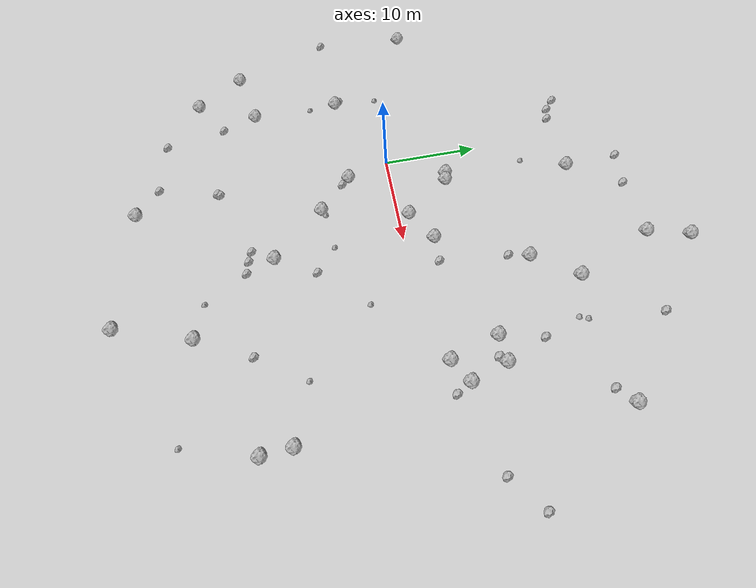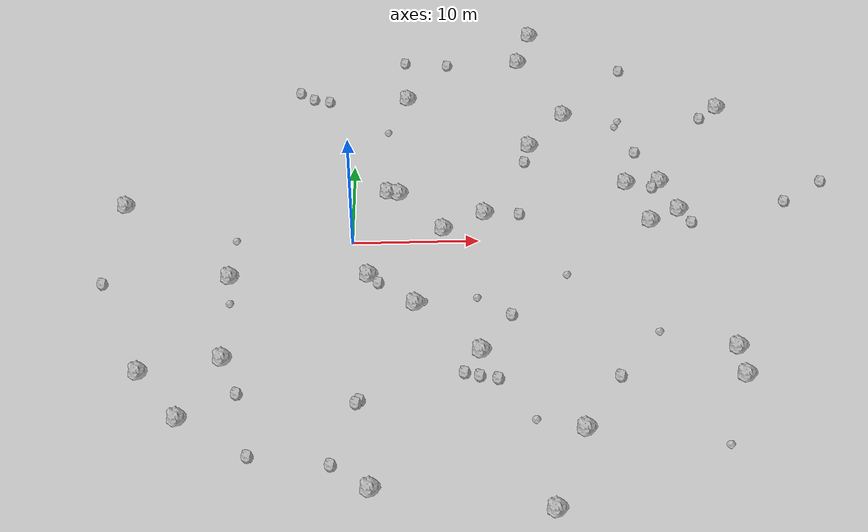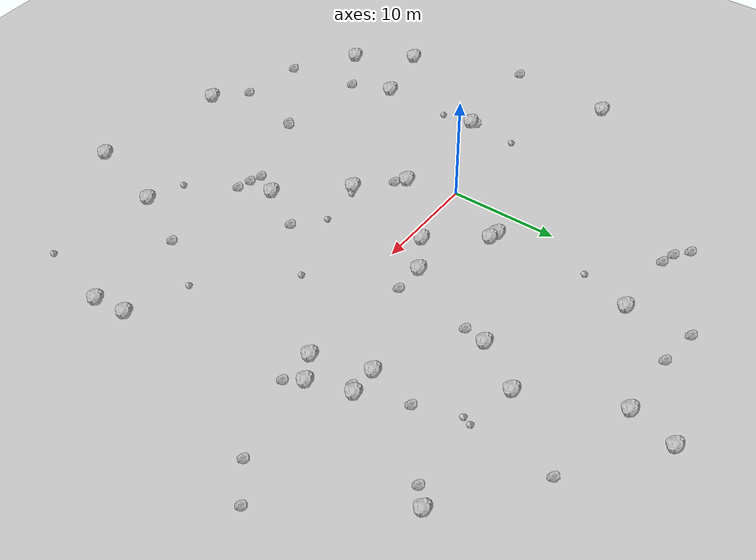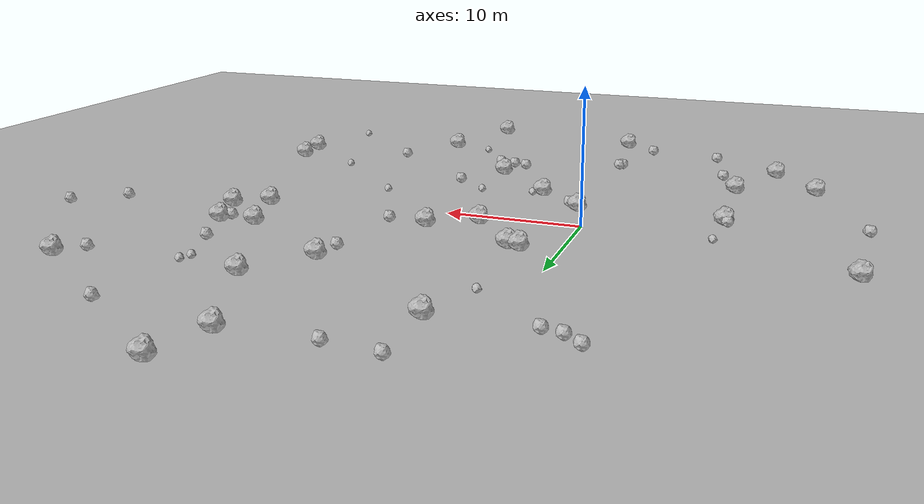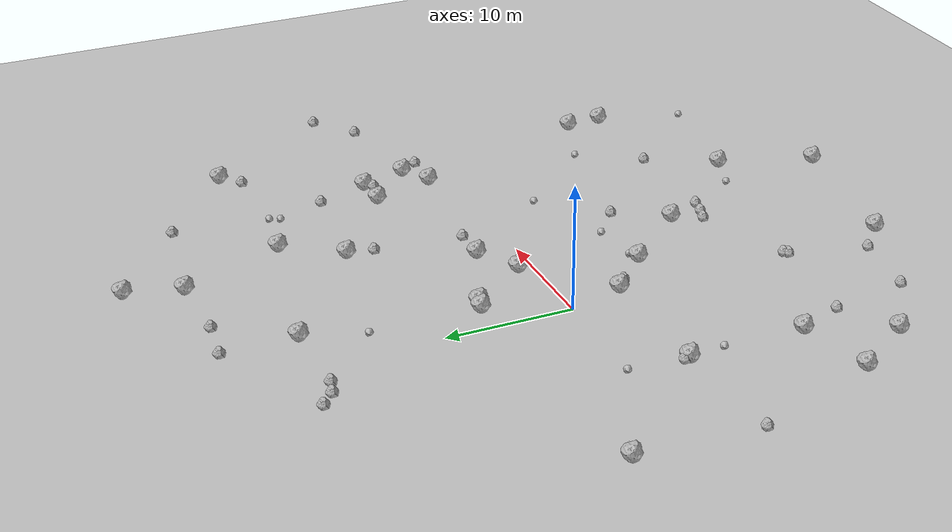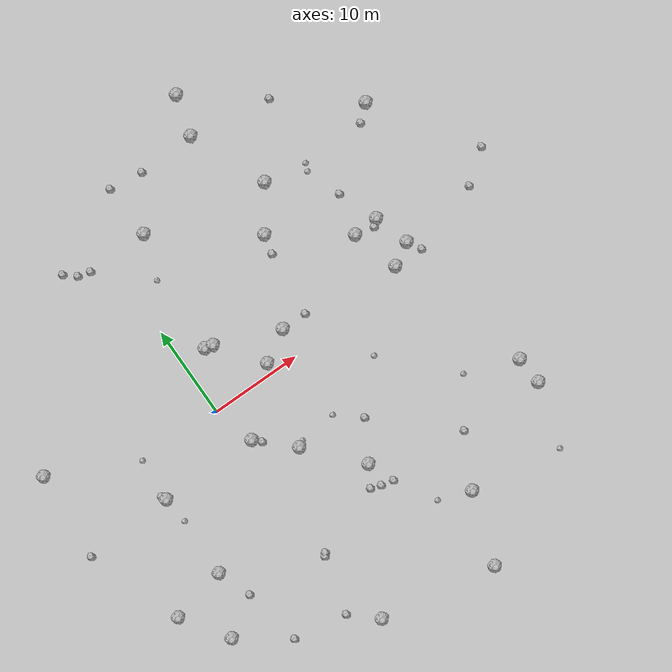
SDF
<sdf version="1.6">
 <world name="default">
  <include><uri>model://custom_ground</uri></include>
  <include><uri>model://sun</uri></include>
  <model name="rock1_0_0">
   <include><uri>model://rock1</uri><pose>29.059063461837425 -16.462699022643832 0.5 0 0 0</pose></include>
  </model>
  <model name="rock1_0_1">
   <include><uri>model://rock1</uri><pose>31.089119189638232 17.47931736922417 0.5 0 0 0</pose></include>
  </model>
  <model name="rock1_0_2">
   <include><uri>model://rock1</uri><pose>4.420348112582573 19.430249538574195 0.5 0 0 0</pose></include>
  </model>
  <model name="rock1_0_3">
   <include><uri>model://rock1</uri><pose>1.8487295856868222 -27.171056192955714 0.5 0 0 0</pose></include>
  </model>
  <model name="rock1_0_4">
   <include><uri>model://rock1</uri><pose>3.710402980066796 5.883594964835176 0.5 0 0 0</pose></include>
  </model>
  <model name="rock1_0_5">
   <include><uri>model://rock1</uri><pose>22.31363023445499 6.829210135725411 0.5 0 0 0</pose></include>
  </model>
  <model name="rock1_0_6">
   <include><uri>model://rock1</uri><pose>23.840737223351006 1.7832460847529106 0.5 0 0 0</pose></include>
  </model>
  <model name="rock1_0_7">
   <include><uri>model://rock1</uri><pose>26.24897104157845 3.185752703556574 0.5 0 0 0</pose></include>
  </model>
  <model name="rock1_0_8">
   <include><uri>model://rock1</uri><pose>-11.943861887500924 -19.983453683427662 0.5 0 0 0</pose></include>
  </model>
  <model name="rock1_0_9">
   <include><uri>model://rock1</uri><pose>7.242347670424227 1.1409997131137715 0.5 0 0 0</pose></include>
  </model>
  <model name="rock1_0_10">
   <include><uri>model://rock1</uri><pose>17.747404276811224 16.681608058786153 0.5 0 0 0</pose></include>
  </model>
  <model name="rock1_0_11">
   <include><uri>model://rock1</uri><pose>17.015834010433544 -21.717289930792354 0.5 0 0 0</pose></include>
  </model>
  <model name="rock1_0_12">
   <include><uri>model://rock1</uri><pose>9.847956789815505 -13.349562966110437 0.5 0 0 0</pose></include>
  </model>
  <model name="rock1_0_13">
   <include><uri>model://rock1</uri><pose>-9.33347560698663 -4.4387042215465335 0.5 0 0 0</pose></include>
  </model>
  <model name="rock1_0_14">
   <include><uri>model://rock1</uri><pose>-9.212783495404677 -13.740995031278803 0.5 0 0 0</pose></include>
  </model>
  <model name="rock1_0_15">
   <include><uri>model://rock1</uri><pose>1.3712645872022868 -4.4377695922704135 0.5 0 0 0</pose></include>
  </model>
  <model name="rock1_0_16">
   <include><uri>model://rock1</uri><pose>15.439551142951608 29.379708416784666 0.5 0 0 0</pose></include>
  </model>
  <model name="rock1_0_17">
   <include><uri>model://rock1</uri><pose>-18.348130232160976 4.746335159639955 0.5 0 0 0</pose></include>
  </model>
  <model name="rock1_0_18">
   <include><uri>model://rock1</uri><pose>14.473351402151692 -29.37377166498147 0.5 0 0 0</pose></include>
  </model>
  <model name="rock1_0_19">
   <include><uri>model://rock1</uri><pose>2.8325222322293975 6.088778664497752 0.5 0 0 0</pose></include>
  </model>
  <model name="rock1_0_20">
   <include><uri>model://rock1</uri><pose>4.9775000413560555 -7.882458926117838 0.5 0 0 0</pose></include>
  </model>
  <model name="rock1_0_21">
   <include><uri>model://rock1</uri><pose>14.206485260796285 25.009208192036155 0.5 0 0 0</pose></include>
  </model>
  <model name="rock1_0_22">
   <include><uri>model://rock1</uri><pose>14.617322873562046 12.223473128417567 0.5 0 0 0</pose></include>
  </model>
  <model name="rock1_0_23">
   <include><uri>model://rock1</uri><pose>10.581508734123013 3.1255079263052394 0.5 0 0 0</pose></include>
  </model>
  <model name="rock1_0_24">
   <include><uri>model://rock1</uri><pose>-15.23246195285207 -15.073760405289233 0.5 0 0 0</pose></include>
  </model>
  <model name="rock1_0_25">
   <include><uri>model://rock1</uri><pose>25.064511754472854 6.985243052871567 0.5 0 0 0</pose></include>
  </model>
  <model name="rock1_0_26">
   <include><uri>model://rock1</uri><pose>28.85140141515216 -13.433298885274997 0.5 0 0 0</pose></include>
  </model>
  <model name="rock2_0_0">
   <include><uri>model://rock2</uri><pose>24.363031763717984 6.3808704338235245 0.3 0 0 0</pose></include>
  </model>
  <model name="rock2_0_1">
   <include><uri>model://rock2</uri><pose>23.38427565199906 11.246991646517145 0.3 0 0 0</pose></include>
  </model>
  <model name="rock2_0_2">
   <include><uri>model://rock2</uri><pose>19.88808058510164 -16.216910463073106 0.3 0 0 0</pose></include>
  </model>
  <model name="rock2_0_3">
   <include><uri>model://rock2</uri><pose>8.539088701713823 -15.550422255641106 0.3 0 0 0</pose></include>
  </model>
  <model name="rock2_0_4">
   <include><uri>model://rock2</uri><pose>14.090621273524825 10.143477939732847 0.3 0 0 0</pose></include>
  </model>
  <model name="rock2_0_5">
   <include><uri>model://rock2</uri><pose>-19.073264352103724 -4.838616449588535 0.3 0 0 0</pose></include>
  </model>
  <model name="rock2_0_6">
   <include><uri>model://rock2</uri><pose>4.172494530581762 25.272423098809547 0.3 0 0 0</pose></include>
  </model>
  <model name="rock2_0_7">
   <include><uri>model://rock2</uri><pose>-6.725809600205466 -23.751025758789158 0.3 0 0 0</pose></include>
  </model>
  <model name="rock2_0_8">
   <include><uri>model://rock2</uri><pose>13.350696959432149 3.1046393661080316 0.3 0 0 0</pose></include>
  </model>
  <model name="rock2_0_9">
   <include><uri>model://rock2</uri><pose>-2.37008758760917 19.377249520785817 0.3 0 0 0</pose></include>
  </model>
  <model name="rock2_0_10">
   <include><uri>model://rock2</uri><pose>12.240065171645483 -9.228333097137057 0.3 0 0 0</pose></include>
  </model>
  <model name="rock2_0_11">
   <include><uri>model://rock2</uri><pose>10.973295370383351 -16.231222099024833 0.3 0 0 0</pose></include>
  </model>
  <model name="rock2_0_12">
   <include><uri>model://rock2</uri><pose>-7.921361068796159 -17.39381523775994 0.3 0 0 0</pose></include>
  </model>
  <model name="rock2_0_13">
   <include><uri>model://rock2</uri><pose>7.877449373799411 24.830635693596243 0.3 0 0 0</pose></include>
  </model>
  <model name="rock2_0_14">
   <include><uri>model://rock2</uri><pose>29.408936433607856 16.04507847560029 0.3 0 0 0</pose></include>
  </model>
  <model name="rock2_0_15">
   <include><uri>model://rock2</uri><pose>34.888653293776336 4.231139722465201 0.3 0 0 0</pose></include>
  </model>
  <model name="rock2_0_16">
   <include><uri>model://rock2</uri><pose>23.089597286585338 23.560352084132134 0.3 0 0 0</pose></include>
  </model>
  <model name="rock2_0_17">
   <include><uri>model://rock2</uri><pose>-4.919197279808078 20.774983271151584 0.3 0 0 0</pose></include>
  </model>
  <model name="rock2_0_18">
   <include><uri>model://rock2</uri><pose>27.08787757607184 1.6877094718921626 0.3 0 0 0</pose></include>
  </model>
  <model name="rock2_0_19">
   <include><uri>model://rock2</uri><pose>-0.936183451437703 -24.73164447259543 0.3 0 0 0</pose></include>
  </model>
  <model name="rock2_0_20">
   <include><uri>model://rock2</uri><pose>9.640628504845829 -15.924617782497975 0.3 0 0 0</pose></include>
  </model>
  <model name="rock2_0_21">
   <include><uri>model://rock2</uri><pose>0.6779966300929132 -18.59264329067997 0.3 0 0 0</pose></include>
  </model>
  <model name="rock2_0_22">
   <include><uri>model://rock2</uri><pose>-9.622307605148597 -3.9217907868616138 0.3 0 0 0</pose></include>
  </model>
  <model name="rock2_0_23">
   <include><uri>model://rock2</uri><pose>-3.719075723429281 19.749213069380836 0.3 0 0 0</pose></include>
  </model>
  <model name="rock2_0_24">
   <include><uri>model://rock2</uri><pose>2.131725640403232 -5.220415735167769 0.3 0 0 0</pose></include>
  </model>
  <model name="rock2_0_25">
   <include><uri>model://rock2</uri><pose>0.9247041682114556 -18.30331851750315 0.3 0 0 0</pose></include>
  </model>
  <model name="rock2_0_26">
   <include><uri>model://rock2</uri><pose>38.29036251289214 6.845331668849681 0.3 0 0 0</pose></include>
  </model>
  <model name="rock3_0_0">
   <include><uri>model://rock3</uri><pose>22.347307419028922 15.879065498094292 0.2 0 0 0</pose></include>
  </model>
  <model name="rock3_0_1">
   <include><uri>model://rock3</uri><pose>23.187783085456523 -11.404438802656028 0.2 0 0 0</pose></include>
  </model>
  <model name="rock3_0_2">
   <include><uri>model://rock3</uri><pose>9.675477758764806 -7.147465325530614 0.2 0 0 0</pose></include>
  </model>
  <model name="rock3_0_3">
   <include><uri>model://rock3</uri><pose>13.503300342796962 -20.56095196759923 0.2 0 0 0</pose></include>
  </model>
  <model name="rock3_0_4">
   <include><uri>model://rock3</uri><pose>5.614300630042198 -7.51786337604662 0.2 0 0 0</pose></include>
  </model>
  <model name="rock3_0_5">
   <include><uri>model://rock3</uri><pose>-9.133794736026712 0.22602313132039953 0.2 0 0 0</pose></include>
  </model>
  <model name="rock3_0_6">
   <include><uri>model://rock3</uri><pose>22.01020141520906 15.048910327240819 0.2 0 0 0</pose></include>
  </model>
  <model name="rock3_0_7">
   <include><uri>model://rock3</uri><pose>26.936928256466487 -23.42193254433988 0.2 0 0 0</pose></include>
  </model>
  <model name="rock3_0_8">
   <include><uri>model://rock3</uri><pose>2.738829809984786 14.683381202929837 0.2 0 0 0</pose></include>
  </model>
  <model name="rock3_0_9">
   <include><uri>model://rock3</uri><pose>16.70277939576085 -4.585411613491065 0.2 0 0 0</pose></include>
  </model>
  <model name="rock3_0_10">
   <include><uri>model://rock3</uri><pose>-9.127446461355131 -7.390728999188433 0.2 0 0 0</pose></include>
  </model>
 </world>
</sdf>
